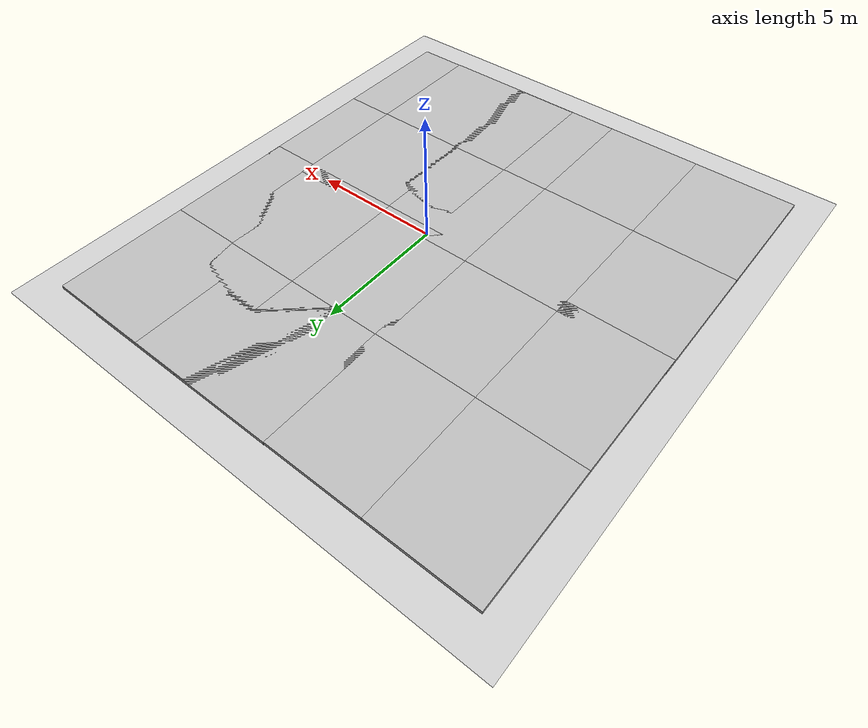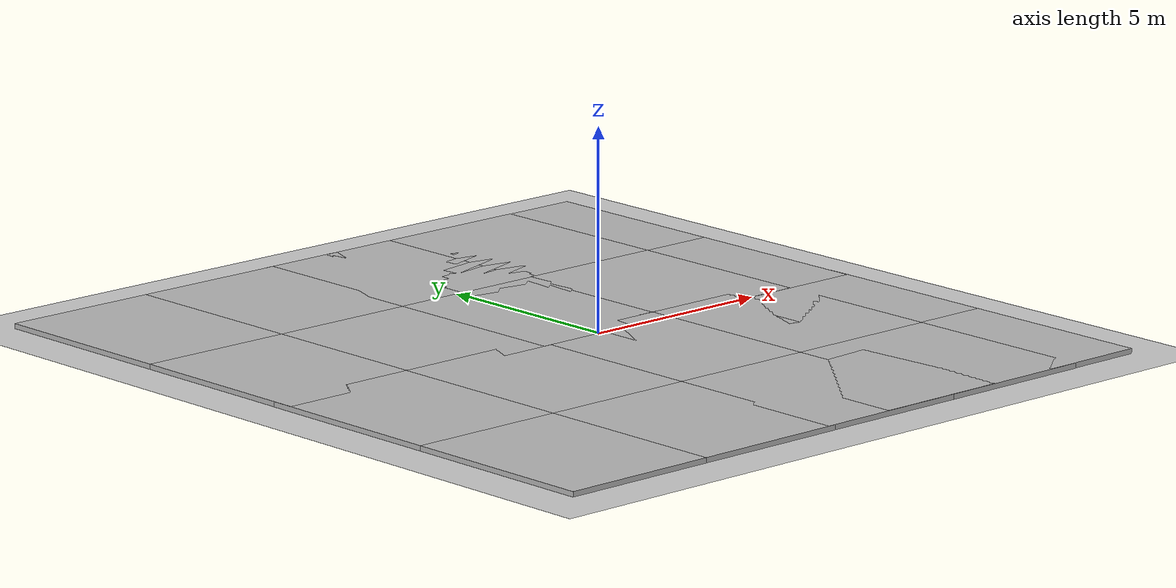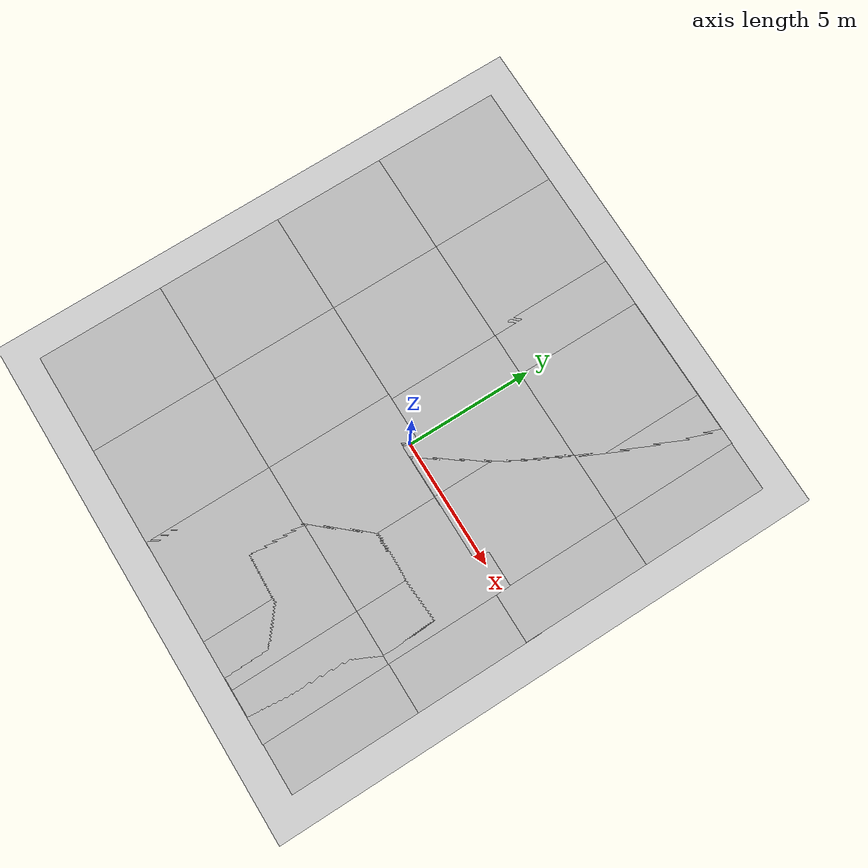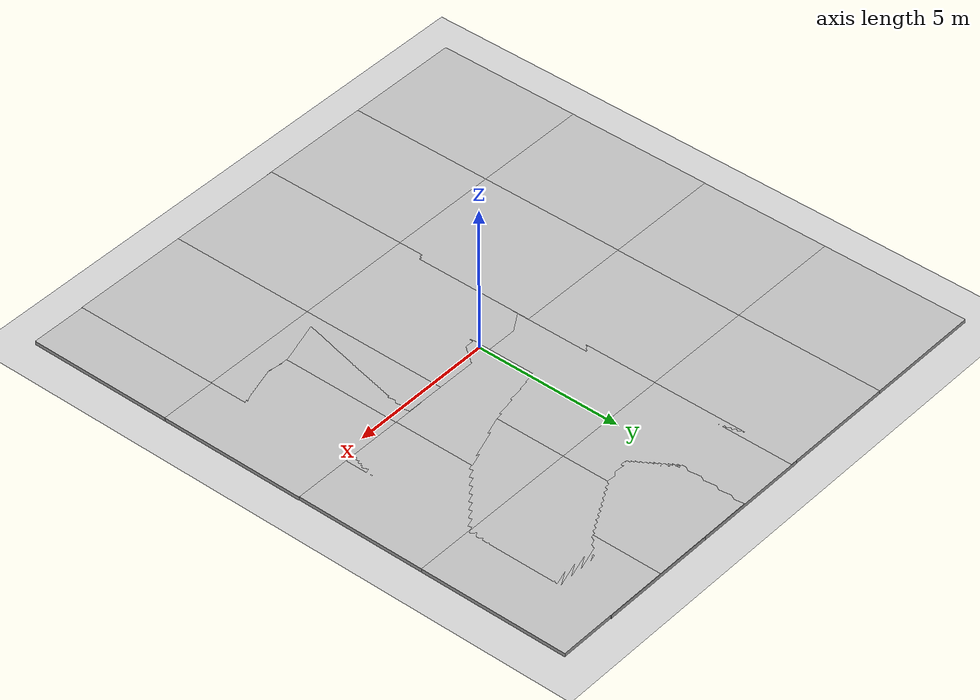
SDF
<sdf version="1.6">
 <world name="default">
  <light name="sun" type="directional">
   <pose>0 0 10 0 -0 0</pose>
   <diffuse>0.8 0.8 0.8 1</diffuse>
   <specular>0.2 0.2 0.2 1</specular>
   <attenuation>
    <range>1000</range>
    <constant>0.9</constant>
    <linear>0.01</linear>
    <quadratic>0.001</quadratic>
   </attenuation>
   <direction>-0.5 0.1 -0.9</direction>
  </light>
  <model name="ground_plane">
   <static>1</static>
   <link name="link">
    <collision name="collision">
     <geometry><plane><normal>0 0 1</normal><size>100 100</size></plane></geometry>
     <surface>
      <contact><collide_bitmask>65535</collide_bitmask></contact>
      <friction><ode><mu>100</mu><mu2>50</mu2></ode></friction>
     </surface>
    </collision>
    <visual name="visual">
     <cast_shadows>0</cast_shadows>
     <geometry><plane><normal>0 0 1</normal><size>100 100</size></plane></geometry>
     <material>
      <script><uri>file://media/materials/scripts/gazebo.material</uri><name>Gazebo/Grey</name></script>
     </material>
    </visual>
   </link>
  </model>
  <gravity>0 0 -9.8</gravity>
  <magnetic_field>6e-06 2.3e-05 -4.2e-05</magnetic_field>
  <atmosphere type="adiabatic"/>
  <physics name="default_physics" default="0" type="ode">
   <max_step_size>0.001</max_step_size>
   <real_time_factor>1</real_time_factor>
   <real_time_update_rate>1000</real_time_update_rate>
  </physics>
  <scene><ambient>0.4 0.4 0.4 1</ambient><background>0.7 0.7 0.7 1</background><shadows>1</shadows></scene>
  <spherical_coordinates>
   <surface_model>EARTH_WGS84</surface_model>
   <latitude_deg>0</latitude_deg>
   <longitude_deg>0</longitude_deg>
   <elevation>0</elevation>
   <heading_deg>0</heading_deg>
  </spherical_coordinates>
  <model name="mud_box">
   <static>1</static>
   <link name="link">
    <collision name="collision"><geometry><box><size>8 10 0.2</size></box></geometry></collision>
    <visual name="visual_1">
     <pose>-2 2.5 0 0 -0 0</pose>
     <cast_shadows>0</cast_shadows>
     <geometry><box><size>4 5 0.2</size></box></geometry>
     <material>
      <script>
       <uri>model://mud_box/materials/scripts</uri>
       <uri>model://mud_box/materials/textures</uri>
       <name>vrc/mud</name>
      </script>
     </material>
    </visual>
    <visual name="visual_2">
     <pose>2 2.5 0 0 -0 0</pose>
     <cast_shadows>0</cast_shadows>
     <geometry><box><size>4 5 0.2</size></box></geometry>
     <material>
      <script>
       <uri>model://mud_box/materials/scripts</uri>
       <uri>model://mud_box/materials/textures</uri>
       <name>vrc/mud</name>
      </script>
     </material>
    </visual>
    <visual name="visual_3">
     <pose>2 -2.5 0 0 -0 0</pose>
     <cast_shadows>0</cast_shadows>
     <geometry><box><size>4 5 0.2</size></box></geometry>
     <material>
      <script>
       <uri>model://mud_box/materials/scripts</uri>
       <uri>model://mud_box/materials/textures</uri>
       <name>vrc/mud</name>
      </script>
     </material>
    </visual>
    <visual name="visual_4">
     <pose>-2 -2.5 0 0 -0 0</pose>
     <cast_shadows>0</cast_shadows>
     <geometry><box><size>4 5 0.2</size></box></geometry>
     <material>
      <script>
       <uri>model://mud_box/materials/scripts</uri>
       <uri>model://mud_box/materials/textures</uri>
       <name>vrc/mud</name>
      </script>
     </material>
    </visual>
   </link>
   <pose>-5.75275 -4.68583 0 0 -0 0</pose>
  </model>
  <model name="mud_box_0">
   <static>1</static>
   <link name="link">
    <collision name="collision"><geometry><box><size>8 10 0.2</size></box></geometry></collision>
    <visual name="visual_1">
     <pose>-2 2.5 0 0 -0 0</pose>
     <cast_shadows>0</cast_shadows>
     <geometry><box><size>4 5 0.2</size></box></geometry>
     <material>
      <script>
       <uri>model://mud_box/materials/scripts</uri>
       <uri>model://mud_box/materials/textures</uri>
       <name>vrc/mud</name>
      </script>
     </material>
    </visual>
    <visual name="visual_2">
     <pose>2 2.5 0 0 -0 0</pose>
     <cast_shadows>0</cast_shadows>
     <geometry><box><size>4 5 0.2</size></box></geometry>
     <material>
      <script>
       <uri>model://mud_box/materials/scripts</uri>
       <uri>model://mud_box/materials/textures</uri>
       <name>vrc/mud</name>
      </script>
     </material>
    </visual>
    <visual name="visual_3">
     <pose>2 -2.5 0 0 -0 0</pose>
     <cast_shadows>0</cast_shadows>
     <geometry><box><size>4 5 0.2</size></box></geometry>
     <material>
      <script>
       <uri>model://mud_box/materials/scripts</uri>
       <uri>model://mud_box/materials/textures</uri>
       <name>vrc/mud</name>
      </script>
     </material>
    </visual>
    <visual name="visual_4">
     <pose>-2 -2.5 0 0 -0 0</pose>
     <cast_shadows>0</cast_shadows>
     <geometry><box><size>4 5 0.2</size></box></geometry>
     <material>
      <script>
       <uri>model://mud_box/materials/scripts</uri>
       <uri>model://mud_box/materials/textures</uri>
       <name>vrc/mud</name>
      </script>
     </material>
    </visual>
   </link>
   <pose>-5.74359 4.7425 0 0 -0 0</pose>
  </model>
  <model name="mud_box_1">
   <static>1</static>
   <link name="link">
    <collision name="collision"><geometry><box><size>8 10 0.2</size></box></geometry></collision>
    <visual name="visual_1">
     <pose>-2 2.5 0 0 -0 0</pose>
     <cast_shadows>0</cast_shadows>
     <geometry><box><size>4 5 0.2</size></box></geometry>
     <material>
      <script>
       <uri>model://mud_box/materials/scripts</uri>
       <uri>model://mud_box/materials/textures</uri>
       <name>vrc/mud</name>
      </script>
     </material>
    </visual>
    <visual name="visual_2">
     <pose>2 2.5 0 0 -0 0</pose>
     <cast_shadows>0</cast_shadows>
     <geometry><box><size>4 5 0.2</size></box></geometry>
     <material>
      <script>
       <uri>model://mud_box/materials/scripts</uri>
       <uri>model://mud_box/materials/textures</uri>
       <name>vrc/mud</name>
      </script>
     </material>
    </visual>
    <visual name="visual_3">
     <pose>2 -2.5 0 0 -0 0</pose>
     <cast_shadows>0</cast_shadows>
     <geometry><box><size>4 5 0.2</size></box></geometry>
     <material>
      <script>
       <uri>model://mud_box/materials/scripts</uri>
       <uri>model://mud_box/materials/textures</uri>
       <name>vrc/mud</name>
      </script>
     </material>
    </visual>
    <visual name="visual_4">
     <pose>-2 -2.5 0 0 -0 0</pose>
     <cast_shadows>0</cast_shadows>
     <geometry><box><size>4 5 0.2</size></box></geometry>
     <material>
      <script>
       <uri>model://mud_box/materials/scripts</uri>
       <uri>model://mud_box/materials/textures</uri>
       <name>vrc/mud</name>
      </script>
     </material>
    </visual>
   </link>
   <pose>2.05715 -4.6773 0 0 -0 0</pose>
  </model>
  <model name="mud_box_2">
   <static>1</static>
   <link name="link">
    <collision name="collision"><geometry><box><size>8 10 0.2</size></box></geometry></collision>
    <visual name="visual_1">
     <pose>-2 2.5 0 0 -0 0</pose>
     <cast_shadows>0</cast_shadows>
     <geometry><box><size>4 5 0.2</size></box></geometry>
     <material>
      <script>
       <uri>model://mud_box/materials/scripts</uri>
       <uri>model://mud_box/materials/textures</uri>
       <name>vrc/mud</name>
      </script>
     </material>
    </visual>
    <visual name="visual_2">
     <pose>2 2.5 0 0 -0 0</pose>
     <cast_shadows>0</cast_shadows>
     <geometry><box><size>4 5 0.2</size></box></geometry>
     <material>
      <script>
       <uri>model://mud_box/materials/scripts</uri>
       <uri>model://mud_box/materials/textures</uri>
       <name>vrc/mud</name>
      </script>
     </material>
    </visual>
    <visual name="visual_3">
     <pose>2 -2.5 0 0 -0 0</pose>
     <cast_shadows>0</cast_shadows>
     <geometry><box><size>4 5 0.2</size></box></geometry>
     <material>
      <script>
       <uri>model://mud_box/materials/scripts</uri>
       <uri>model://mud_box/materials/textures</uri>
       <name>vrc/mud</name>
      </script>
     </material>
    </visual>
    <visual name="visual_4">
     <pose>-2 -2.5 0 0 -0 0</pose>
     <cast_shadows>0</cast_shadows>
     <geometry><box><size>4 5 0.2</size></box></geometry>
     <material>
      <script>
       <uri>model://mud_box/materials/scripts</uri>
       <uri>model://mud_box/materials/textures</uri>
       <name>vrc/mud</name>
      </script>
     </material>
    </visual>
   </link>
   <pose>2.03803 4.75296 0 0 -0 0</pose>
  </model>
  <model name="mud_box_4">
   <static>1</static>
   <link name="link">
    <collision name="collision"><geometry><box><size>8 10 0.2</size></box></geometry></collision>
    <visual name="visual_1">
     <pose>-2 2.5 0 0 -0 0</pose>
     <cast_shadows>0</cast_shadows>
     <geometry><box><size>4 5 0.2</size></box></geometry>
     <material>
      <script>
       <uri>model://mud_box/materials/scripts</uri>
       <uri>model://mud_box/materials/textures</uri>
       <name>vrc/mud</name>
      </script>
     </material>
    </visual>
    <visual name="visual_2">
     <pose>2 2.5 0 0 -0 0</pose>
     <cast_shadows>0</cast_shadows>
     <geometry><box><size>4 5 0.2</size></box></geometry>
     <material>
      <script>
       <uri>model://mud_box/materials/scripts</uri>
       <uri>model://mud_box/materials/textures</uri>
       <name>vrc/mud</name>
      </script>
     </material>
    </visual>
    <visual name="visual_3">
     <pose>2 -2.5 0 0 -0 0</pose>
     <cast_shadows>0</cast_shadows>
     <geometry><box><size>4 5 0.2</size></box></geometry>
     <material>
      <script>
       <uri>model://mud_box/materials/scripts</uri>
       <uri>model://mud_box/materials/textures</uri>
       <name>vrc/mud</name>
      </script>
     </material>
    </visual>
    <visual name="visual_4">
     <pose>-2 -2.5 0 0 -0 0</pose>
     <cast_shadows>0</cast_shadows>
     <geometry><box><size>4 5 0.2</size></box></geometry>
     <material>
      <script>
       <uri>model://mud_box/materials/scripts</uri>
       <uri>model://mud_box/materials/textures</uri>
       <name>vrc/mud</name>
      </script>
     </material>
    </visual>
   </link>
   <pose>3.94995 4.7372 0 0 -0 0</pose>
  </model>
  <model name="mud_box_5">
   <static>1</static>
   <link name="link">
    <collision name="collision"><geometry><box><size>8 10 0.2</size></box></geometry></collision>
    <visual name="visual_1">
     <pose>-2 2.5 0 0 -0 0</pose>
     <cast_shadows>0</cast_shadows>
     <geometry><box><size>4 5 0.2</size></box></geometry>
     <material>
      <script>
       <uri>model://mud_box/materials/scripts</uri>
       <uri>model://mud_box/materials/textures</uri>
       <name>vrc/mud</name>
      </script>
     </material>
    </visual>
    <visual name="visual_2">
     <pose>2 2.5 0 0 -0 0</pose>
     <cast_shadows>0</cast_shadows>
     <geometry><box><size>4 5 0.2</size></box></geometry>
     <material>
      <script>
       <uri>model://mud_box/materials/scripts</uri>
       <uri>model://mud_box/materials/textures</uri>
       <name>vrc/mud</name>
      </script>
     </material>
    </visual>
    <visual name="visual_3">
     <pose>2 -2.5 0 0 -0 0</pose>
     <cast_shadows>0</cast_shadows>
     <geometry><box><size>4 5 0.2</size></box></geometry>
     <material>
      <script>
       <uri>model://mud_box/materials/scripts</uri>
       <uri>model://mud_box/materials/textures</uri>
       <name>vrc/mud</name>
      </script>
     </material>
    </visual>
    <visual name="visual_4">
     <pose>-2 -2.5 0 0 -0 0</pose>
     <cast_shadows>0</cast_shadows>
     <geometry><box><size>4 5 0.2</size></box></geometry>
     <material>
      <script>
       <uri>model://mud_box/materials/scripts</uri>
       <uri>model://mud_box/materials/textures</uri>
       <name>vrc/mud</name>
      </script>
     </material>
    </visual>
   </link>
   <pose>3.96626 -4.66 0 0 -0 0</pose>
  </model>
 </world>
</sdf>
